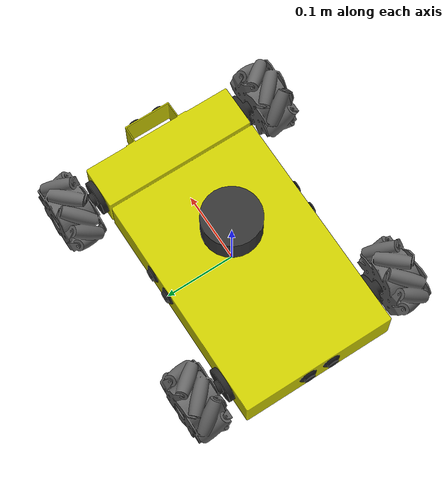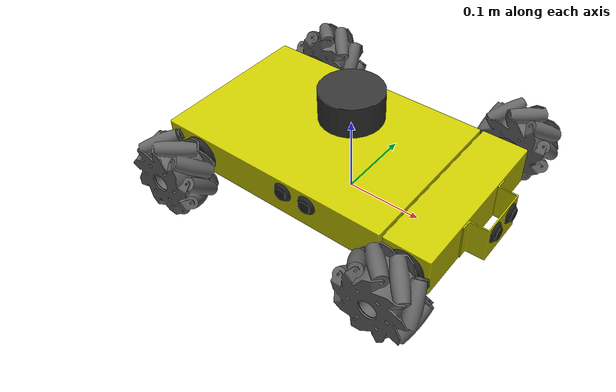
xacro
<?xml version="1.0"?>
<robot name="robot_mecanum" xmlns:xacro="http://www.ros.org/wiki/xacro">

  <xacro:property name="PI"           value="3.1415926535897931"/>
  <xacro:property name="wheel_radius" value="0.050"/>
  <xacro:property name="wheel_width"  value="0.0505"/>
  <xacro:property name="pkg"          value="gazebo_praktikum"/>

  <!-- ── Materials ─────────────────────────────────────────────────── -->
  <material name="mec_yellow">    <color rgba="0.8 0.8 0.0 1.0"/></material>
  <material name="mec_black">     <color rgba="0.15 0.15 0.15 1.0"/></material>
  <material name="mec_dark_grey"> <color rgba="0.2 0.2 0.2 1.0"/></material>
  <material name="mec_light_grey"><color rgba="0.4 0.4 0.4 1.0"/></material>

  <!-- ── Base ──────────────────────────────────────────────────────── -->
  <link name="base_footprint"/>

  <joint name="base_link_joint" type="fixed">
    <origin xyz="0 0 0.05" rpy="0 0 0"/>
    <parent link="base_footprint"/>
    <child  link="base_link"/>
  </joint>

  <link name="base_link">
    <visual>
      <origin xyz="0 0 0" rpy="0 0 0"/>
      <geometry>
        <mesh filename="package://${pkg}/meshes/nexus/nexus_base_link.STL"
              scale="0.001 0.001 0.001"/>
      </geometry>
      <material name="mec_yellow"/>
    </visual>
    <collision>
      <origin xyz="0 0 0"/>
      <geometry>
        <mesh filename="package://${pkg}/meshes/nexus/nexus_base_link_collision.STL"
              scale="0.001 0.001 0.001"/>
      </geometry>
    </collision>
    <inertial>
      <origin xyz="-0.01103 0 0.002" rpy="0 0 0"/>
      <mass value="2.844"/>
      <inertia ixx="0.018819942" ixy="0"          ixz="-0.000101519"
               iyy="0.057333716" iyz="0"
               izz="0.074201740"/>
    </inertial>
  </link>

  <!-- ── Wheel shaft + wheel macro ─────────────────────────────────── -->
  <!--
    shaft_xyz  : posisi shaft dari base_link
    shaft_rpy  : kiri=0,0,0 ; kanan=PI,0,0 (membalik orientasi wheel shaft)
    wheel_mesh : mecanum_wheel_left.STL atau mecanum_wheel_right.STL
  -->
  <xacro:macro name="mecanum_wheel" params="prefix shaft_xyz shaft_rpy wheel_mesh">

    <joint name="${prefix}_wheel_shaft_joint" type="fixed">
      <origin xyz="${shaft_xyz}" rpy="${shaft_rpy}"/>
      <parent link="base_link"/>
      <child  link="${prefix}_wheel_shaft"/>
    </joint>

    <link name="${prefix}_wheel_shaft">
      <visual>
        <origin xyz="0 0 0" rpy="0 0 0"/>
        <geometry>
          <mesh filename="package://${pkg}/meshes/nexus/wheel_shaft.STL"
                scale="0.001 0.001 0.001"/>
        </geometry>
        <material name="mec_black"/>
      </visual>
      <collision>
        <origin xyz="0 0 0"/>
        <geometry>
          <mesh filename="package://${pkg}/meshes/nexus/wheel_shaft.STL"
                scale="0.001 0.001 0.001"/>
        </geometry>
      </collision>
      <inertial>
        <origin xyz="0 0.01221 0" rpy="0 0 0"/>
        <mass value="0.055"/>
        <inertia ixx="0.000021370" ixy="0" ixz="0"
                 iyy="0.000009966" iyz="0"
                 izz="0.000021370"/>
      </inertial>
    </link>

    <joint name="${prefix}_wheel_joint" type="continuous">
      <origin xyz="0 0.042 0" rpy="0 0 0"/>
      <parent link="${prefix}_wheel_shaft"/>
      <child  link="${prefix}_wheel"/>
      <axis xyz="0 1 0"/>
    </joint>

    <link name="${prefix}_wheel">
      <visual>
        <origin xyz="0 0 0" rpy="0 0 0"/>
        <geometry>
          <mesh filename="package://${pkg}/meshes/nexus/${wheel_mesh}"
                scale="0.001 0.001 0.001"/>
        </geometry>
        <material name="mec_light_grey"/>
      </visual>
      <collision>
        <origin xyz="0 0 0" rpy="${PI/2} 0 0"/>
        <geometry>
          <cylinder radius="${wheel_radius}" length="${wheel_width}"/>
        </geometry>
      </collision>
      <inertial>
        <origin xyz="0.0 0.0 0.0" rpy="0 0 0"/>
        <mass value="0.3844"/>
        <inertia ixx="0.000324824" ixy="0" ixz="0"
                 iyy="0.000480000" iyz="0"
                 izz="0.000324824"/>
      </inertial>
    </link>

    <gazebo reference="${prefix}_wheel_shaft">
      <material>Gazebo/Black</material>
    </gazebo>
    <gazebo reference="${prefix}_wheel">
      <material>Gazebo/Grey</material>
      <mu1>0.0</mu1>
      <mu2>0.0</mu2>
    </gazebo>

  </xacro:macro>

  <!-- 4 roda mecanum sesuai nexus_4wd_mecanum.xacro -->
  <xacro:mecanum_wheel prefix="upper_left"
    shaft_xyz="0.150 0.108 0.0"   shaft_rpy="0 0 0"
    wheel_mesh="mecanum_wheel_left.STL"/>

  <xacro:mecanum_wheel prefix="lower_left"
    shaft_xyz="-0.150 0.108 0.0"  shaft_rpy="0 0 0"
    wheel_mesh="mecanum_wheel_right.STL"/>

  <xacro:mecanum_wheel prefix="upper_right"
    shaft_xyz="0.150 -0.108 0.0"  shaft_rpy="${PI} 0 0"
    wheel_mesh="mecanum_wheel_right.STL"/>

  <xacro:mecanum_wheel prefix="lower_right"
    shaft_xyz="-0.150 -0.108 0.0" shaft_rpy="${PI} 0 0"
    wheel_mesh="mecanum_wheel_left.STL"/>

  <!-- ── Sensor URM04 ultrasonik (visual only) ─────────────────────── -->
  <joint name="left_sensor_joint" type="fixed">
    <origin xyz="0 0.108 0.010" rpy="0 0 ${PI/2}"/>
    <parent link="base_link"/>
    <child  link="left_sensor"/>
  </joint>
  <link name="left_sensor">
    <visual>
      <origin xyz="0 0 0" rpy="${PI/2} 0 0"/>
      <geometry>
        <mesh filename="package://${pkg}/meshes/nexus/urm04.STL"
              scale="0.001 0.001 0.001"/>
      </geometry>
      <material name="mec_black"/>
    </visual>
  </link>

  <joint name="front_sensor_joint" type="fixed">
    <origin xyz="0.205 0 0.010" rpy="0 0 0"/>
    <parent link="base_link"/>
    <child  link="front_sensor"/>
  </joint>
  <link name="front_sensor">
    <visual>
      <origin xyz="0 0 0" rpy="${PI/2} 0 0"/>
      <geometry>
        <mesh filename="package://${pkg}/meshes/nexus/urm04.STL"
              scale="0.001 0.001 0.001"/>
      </geometry>
      <material name="mec_black"/>
    </visual>
  </link>

  <joint name="right_sensor_joint" type="fixed">
    <origin xyz="0 -0.108 0.010" rpy="0 0 ${-PI/2}"/>
    <parent link="base_link"/>
    <child  link="right_sensor"/>
  </joint>
  <link name="right_sensor">
    <visual>
      <origin xyz="0 0 0" rpy="${PI/2} 0 0"/>
      <geometry>
        <mesh filename="package://${pkg}/meshes/nexus/urm04.STL"
              scale="0.001 0.001 0.001"/>
      </geometry>
      <material name="mec_black"/>
    </visual>
  </link>

  <joint name="rear_sensor_joint" type="fixed">
    <origin xyz="-0.201 0 0.010" rpy="0 0 ${PI}"/>
    <parent link="base_link"/>
    <child  link="rear_sensor"/>
  </joint>
  <link name="rear_sensor">
    <visual>
      <origin xyz="0 0 0" rpy="${PI/2} 0 0"/>
      <geometry>
        <mesh filename="package://${pkg}/meshes/nexus/urm04.STL"
              scale="0.001 0.001 0.001"/>
      </geometry>
      <material name="mec_black"/>
    </visual>
  </link>

  <!-- ── LIDAR 360° ───────────────────────────────────────────────── -->
  <joint name="lidar_joint" type="fixed">
    <origin xyz="0 0 0.08" rpy="0 0 0"/>
    <parent link="base_link"/>
    <child  link="lidar_link"/>
  </joint>

  <link name="lidar_link">
    <inertial>
      <mass value="0.1"/>
      <origin xyz="0 0 0"/>
      <inertia ixx="0.000001" ixy="0" ixz="0"
               iyy="0.000001" iyz="0" izz="0.000001"/>
    </inertial>
    <collision>
      <origin xyz="0 0 0"/>
      <geometry><cylinder radius="0.04" length="0.04"/></geometry>
    </collision>
    <visual>
      <origin xyz="0 0 0"/>
      <geometry><cylinder radius="0.04" length="0.04"/></geometry>
      <material name="mec_dark_grey"/>
    </visual>
  </link>

  <!-- ── Gazebo: colors ───────────────────────────────────────────── -->
  <gazebo reference="base_footprint">
    <material>Gazebo/Yellow</material>
    <gravity>true</gravity>
  </gazebo>
  <gazebo reference="base_link">
    <material>Gazebo/Yellow</material>
  </gazebo>
  <gazebo reference="left_sensor"><material>Gazebo/Black</material></gazebo>
  <gazebo reference="front_sensor"><material>Gazebo/Black</material></gazebo>
  <gazebo reference="right_sensor"><material>Gazebo/Black</material></gazebo>
  <gazebo reference="rear_sensor"><material>Gazebo/Black</material></gazebo>

  <!-- ── Plugin: Planar Move (menggantikan libnexus_ros_force_based_move) ── -->
  <gazebo>
    <plugin name="gazebo_ros_planar_move" filename="libgazebo_ros_planar_move.so">
      <ros>
        <remapping>cmd_vel:=cmd_vel</remapping>
        <remapping>odom:=odom</remapping>
      </ros>
      <update_rate>50</update_rate>
      <publish_rate>20</publish_rate>
      <publish_odom>true</publish_odom>
      <publish_odom_tf>true</publish_odom_tf>
      <odometry_frame>odom</odometry_frame>
      <robot_base_frame>base_footprint</robot_base_frame>
    </plugin>
  </gazebo>

  <!-- ── Plugin: LIDAR ────────────────────────────────────────────── -->
  <gazebo reference="lidar_link">
    <material>Gazebo/DarkGrey</material>
    <sensor name="lidar_sensor" type="ray">
      <always_on>true</always_on>
      <visualize>false</visualize>
      <update_rate>10</update_rate>
      <ray>
        <scan>
          <horizontal>
            <samples>360</samples>
            <resolution>1</resolution>
            <min_angle>-3.14159</min_angle>
            <max_angle>3.14159</max_angle>
          </horizontal>
        </scan>
        <range>
          <min>0.20</min>
          <max>8.0</max>
          <resolution>0.01</resolution>
        </range>
        <noise>
          <type>gaussian</type>
          <mean>0.0</mean>
          <stddev>0.01</stddev>
        </noise>
      </ray>
      <plugin name="lidar_plugin" filename="libgazebo_ros_ray_sensor.so">
        <ros>
          <remapping>~/out:=scan</remapping>
        </ros>
        <output_type>sensor_msgs/LaserScan</output_type>
        <frame_name>lidar_link</frame_name>
      </plugin>
    </sensor>
  </gazebo>

</robot>
